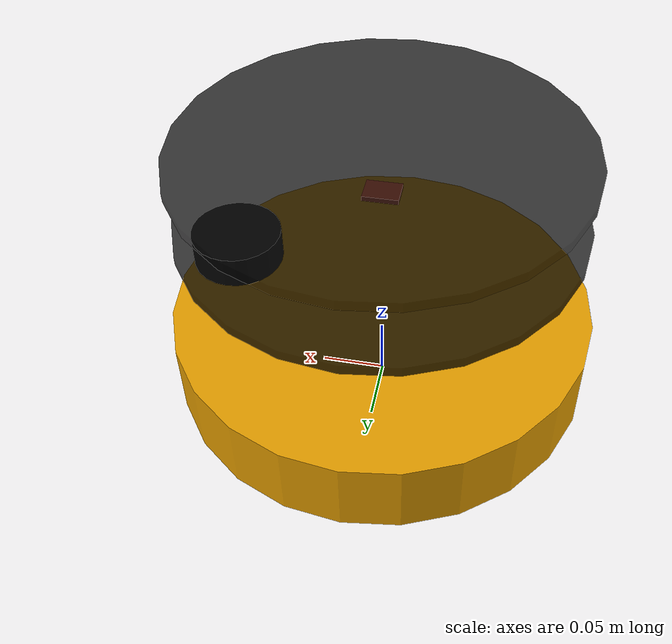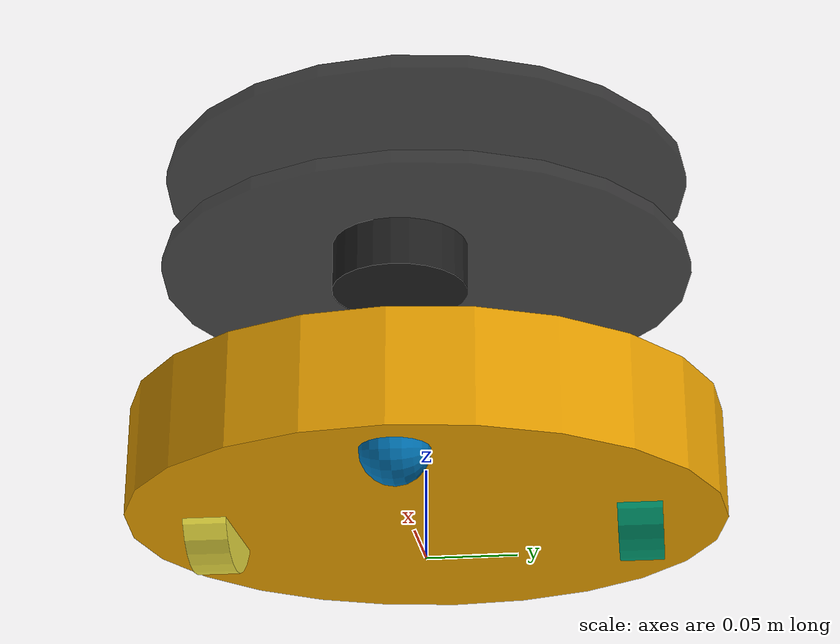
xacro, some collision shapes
<?xml version="1.0"?>
<robot name="xerbo" xmlns:xacro="http://ros.org/wiki/xacro">

  <xacro:include filename="$(find xerbo_description)/urdf/base.urdf.xacro" />
  <xacro:include filename="$(find xerbo_description)/urdf/mounting-frame.urdf.xacro" />
  <xacro:include filename="$(find xerbo_description)/urdf/imu.urdf.xacro" />
  <xacro:include filename="$(find xerbo_description)/urdf/lidar.urdf.xacro" />

</robot>

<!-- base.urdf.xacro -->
<robot xmlns:xacro="http://ros.org/wiki/xacro">

  <!-- Top of base is z = 0.072-->

  <!-- Define robot constants -->
  <xacro:property name="wheel_separation" value="0.235"/>
  <xacro:property name="wheel_radius" value="0.036"/>
  <xacro:property name="wheel_width" value="0.024"/>
  <xacro:property name="wheel_torque" value="1.0"/>
  <xacro:property name="wheel_accel" value="1.8"/>

  <!-- Robot Base -->
  <link name="base_link">
    <inertial>
      <mass value="2" />
      <origin xyz="0 0 0" />
      <inertia ixx="0.01" ixy="0.0" ixz="0.0" iyy="0.01" iyz="0.0" izz="0.5" />
    </inertial>

    <visual>
      <origin xyz="0 0 0.0308" rpy="0 0 0" />
      <geometry>
        <!-- "file://" syntax is compatible with both RVIZ and Gazebo -->
        <mesh filename="file://$(find xerbo_description)/meshes/base.dae" />
      </geometry>
    </visual>

    <collision>
      <origin xyz="0.0 0.0 0.0308" rpy="0 0 0" />
      <geometry>
        <cylinder length="0.0611632" radius="0.16495" />
      </geometry>
    </collision>
  </link>

   <!-- Robot Footprint -->
  <link name="base_footprint">
    <visual>
      <origin xyz="0 0 0" rpy="0 0 0" />
      <geometry>
        <box size="0.001 0.001 0.001" />
      </geometry>
      <material name="Green" />
    </visual>

    <collision>
      <origin xyz="0 0 0.017" rpy="0 0 0" />
      <geometry>
        <box size="0.001 0.001 0.001" />
      </geometry>
    </collision>
  </link>

  <joint name="base_joint" type="fixed">
    <origin xyz="0 0 0.017" rpy="0 0 0" />
    <parent link="base_footprint"/>
    <child link="base_link"/>
  </joint>

  <!-- Wheels -->
  <xacro:macro name="create_wheel" params="prefix y_offset">">
    <link name="${prefix}_link">
      <inertial>
        <origin xyz="0 0 0" />
        <mass value="0.01" />
        <inertia ixx="0.001" ixy="0.0" ixz="0.0" iyy="0.001" iyz="0.0" izz="0.001" />
      </inertial>

      <visual>
        <origin xyz="0 0 0" rpy="0 ${pi/2} ${pi/2}"/>
        <geometry>
            <cylinder radius="${wheel_radius}" length="${wheel_width}"/>
        </geometry>
      </visual>

      <collision>
        <origin xyz="0 0 0" rpy="0 ${pi/2} ${pi/2}"/>
        <geometry>
          <cylinder radius="${wheel_radius}" length="${wheel_width}"/>
        </geometry>
      </collision>
    </link>

    <joint name="${prefix}_joint" type="fixed">
      <origin xyz="0 ${y_offset} 0.015" rpy="0 0 0" />
      <parent link="base_link"/>
      <child link="${prefix}_link"/>
      <axis xyz="0 1 0"/>
    </joint>
  </xacro:macro>

  <xacro:create_wheel prefix="drivewhl_l" y_offset="${wheel_separation / 2}" />
  <xacro:create_wheel prefix="drivewhl_r" y_offset="${wheel_separation / -2}" />

  <link name="front_caster_link">
    <inertial>
      <origin xyz="0 0 0" />
      <mass value="0.01" />
      <inertia ixx="0.001" ixy="0.0" ixz="0.0" iyy="0.001" iyz="0.0" izz="0.001" />
    </inertial>

    <visual>
      <origin xyz="0 0 0" rpy="0 ${pi/2} ${pi/2}" />
      <geometry>
        <sphere radius="0.018" />
      </geometry>
    </visual>

    <collision>
      <origin xyz="0 0 0" rpy="0 ${pi/2} ${pi/2}" />
      <geometry>
        <sphere radius="0.018" />
      </geometry>
    </collision>
  </link>

  <joint name="front_caster_joint" type="fixed">
    <origin xyz="0.13 0 0.0" rpy="0 0 0" />
    <parent link="base_link"/>
    <child link="front_caster_link"/>
    <axis xyz="0 1 0" />
  </joint>

  <link name="wall_sensor_link">
    <inertial>
      <mass value="0.01" />
      <origin xyz="0 0 0" />
      <inertia ixx="0.001" ixy="0.0" ixz="0.0" iyy="0.001" iyz="0.0" izz="0.001" />
    </inertial>
  </link>

  <joint name="base_wall_sensor_joint" type="fixed">
    <origin xyz="0.09 -0.120 0.042" rpy="0 0 -1.0" />
    <parent link="base_link" />
    <child link="wall_sensor_link" />
  </joint>

  <link name="left_cliff_sensor_link">
    <inertial>
      <mass value="0.01" />
      <origin xyz="0 0 0" />
      <inertia ixx="0.001" ixy="0.0" ixz="0.0" iyy="0.001" iyz="0.0" izz="0.001" />
    </inertial>
  </link>

  <joint name="base_left_cliff_sensor_joint" type="fixed">
    <origin xyz="0.07 0.14 0.01" rpy="0 ${pi/2} 0" />
    <parent link="base_link" />
    <child link="left_cliff_sensor_link" />
  </joint>

  <link name="right_cliff_sensor_link">
    <inertial>
      <mass value="0.01" />
      <origin xyz="0 0 0" />
      <inertia ixx="0.001" ixy="0.0" ixz="0.0" iyy="0.001" iyz="0.0" izz="0.001" />
    </inertial>
  </link>

  <joint name="base_right_cliff_sensor_joint" type="fixed">
    <origin xyz="0.07 -0.14 0.01" rpy="0 ${pi/2} 0" />
    <parent link="base_link" />
    <child link="right_cliff_sensor_link" />
  </joint>

  <link name="leftfront_cliff_sensor_link">
    <inertial>
      <mass value="0.01" />
      <origin xyz="0 0 0" />
      <inertia ixx="1.0" ixy="0.0" ixz="0.0" iyy="0.01" iyz="0.0" izz="0.01" />
    </inertial>
  </link>

  <joint name="base_leftfront_cliff_sensor_joint" type="fixed">
    <origin xyz="0.15 0.04 0.01" rpy="0 ${pi/2} 0" />
    <parent link="base_link" />
    <child link="leftfront_cliff_sensor_link" />
  </joint>

  <link name="rightfront_cliff_sensor_link">
    <inertial>
      <mass value="0.01" />
      <origin xyz="0 0 0" />
      <inertia ixx="0.001" ixy="0.0" ixz="0.0" iyy="0.001" iyz="0.0" izz="0.001" />
    </inertial>
  </link>

  <joint name="base_rightfront_cliff_sensor_joint" type="fixed">
    <origin xyz="0.15 -0.04 0.01" rpy="0 ${pi/2} 0" />
    <parent link="base_link" />
    <child link="rightfront_cliff_sensor_link" />
  </joint>

  <xacro:include filename="$(find xerbo_description)/urdf/base.gazebo.urdf.xacro" />

</robot>

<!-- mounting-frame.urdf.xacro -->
<robot xmlns:xacro="http://ros.org/wiki/xacro">

  <xacro:property name="mounting_plate_radius" value="0.1524" />
  <xacro:property name="mounting_plate_length" value="0.00746125" />

  <xacro:macro name="create_plate_link" params="name_prefix origin_z">
    <link name="${name_prefix}_plate_link">
      <inertial>
        <origin xyz="0 0 0" rpy="0 0 0"/>
        <mass value="0.205"/>
        <inertia ixx="0.001"  ixy="0"  ixz="0" iyy="0.001" iyz="0" izz="0.001" />
      </inertial>

      <collision>
        <origin xyz="0 0 0" rpy="0 0 0"/>
        <geometry>
          <cylinder radius="${mounting_plate_radius}" length="${mounting_plate_length}"/>
        </geometry>
      </collision>

      <visual>
        <origin xyz="0 0 0" rpy="0 0 0"/>
        <geometry>
          <cylinder radius="${mounting_plate_radius}" length="${mounting_plate_length}"/>
        </geometry>
        <material name="black-opaque">
          <color rgba="0 0 0 0.75"/>
        </material>
      </visual>
    </link>

    <joint name="${name_prefix}_plate_joint" type="fixed">
      <parent link="base_link"/>
      <child link="${name_prefix}_plate_link"/>
      <origin xyz="0 0 ${origin_z}" rpy="0 0 0"/>
    </joint>
  </xacro:macro>

  <xacro:create_plate_link name_prefix="first" origin_z="0.1497875" />
  <xacro:create_plate_link name_prefix="second" origin_z="0.20535" />

</robot>

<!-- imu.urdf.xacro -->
<robot xmlns:xacro="http://ros.org/wiki/xacro">
  <xacro:property name="imu_x_size" value="0.027" />
  <xacro:property name="imu_y_size" value="0.02" />
  <xacro:property name="imu_z_size" value="0.004" />

  <link name="imu_link">
    <inertial>
      <mass value="0.001"/>
      <origin rpy="0 0 0" xyz="0 0 0"/>
      <inertia ixx="0.0001" ixy="0" ixz="0" iyy="0.000001" iyz="0" izz="0.0001"/>
    </inertial>

    <collision>
      <geometry>
        <box size="${imu_x_size} ${imu_y_size} ${imu_z_size}"/>
      </geometry>
    </collision>

    <visual>
      <geometry>
        <box size="${imu_x_size} ${imu_y_size} ${imu_z_size}"/>
      </geometry>
      <material name="hunter-green">
        <color rgba="255 87 51 1"/>
      </material>
    </visual>
  </link>

  <joint name="imu_joint" type="fixed">
    <parent link="base_link"/>
    <child link="imu_link"/>
    <origin xyz="0 0 0.170475"/>
  </joint>

  <xacro:include filename="$(find xerbo_description)/urdf/imu.gazebo.urdf.xacro" />

</robot>

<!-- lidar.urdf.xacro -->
<robot xmlns:xacro="http://ros.org/wiki/xacro">
  <xacro:property name="lidar_radius" value="0.035" />
  <xacro:property name="lidar_length" value="0.0254" />

  <link name="lidar_link">
    <inertial>
      <origin xyz="0 0 0" rpy="0 0 0"/>
      <mass value="0.17"/>
      <inertia ixx="0.001"  ixy="0"  ixz="0" iyy="0.001" iyz="0" izz="0.001" />
    </inertial>

    <collision>
      <origin xyz="0 0 0" rpy="0 0 0"/>
      <geometry>
        <cylinder radius="${lidar_radius}" length="${lidar_length}"/>
      </geometry>
    </collision>

    <visual>
      <origin xyz="0 0 0" rpy="0 0 0"/>
      <geometry>
        <cylinder radius="${lidar_radius}" length="${lidar_length}"/>
      </geometry>
      <material name="black"/>
    </visual>
  </link>

  <joint name="lidar_joint" type="fixed">
    <parent link="base_link"/>
    <child link="lidar_link"/>
    <origin xyz="0.115 0 0.10375" rpy="0 0 0"/>
  </joint>

  <xacro:include filename="$(find xerbo_description)/urdf/lidar.gazebo.urdf.xacro" />

</robot>
